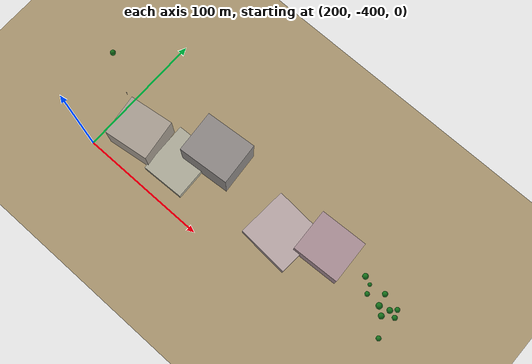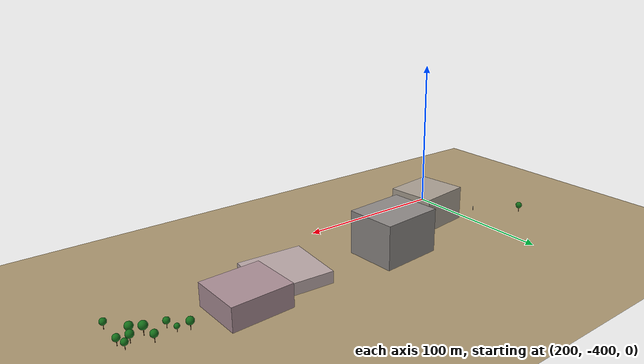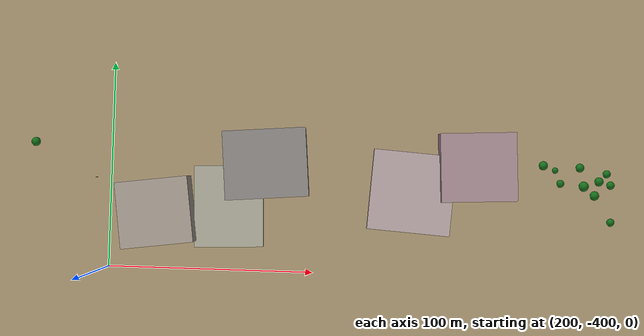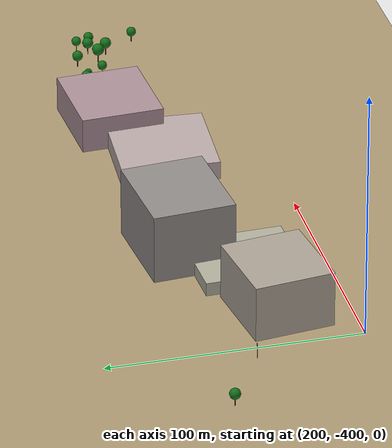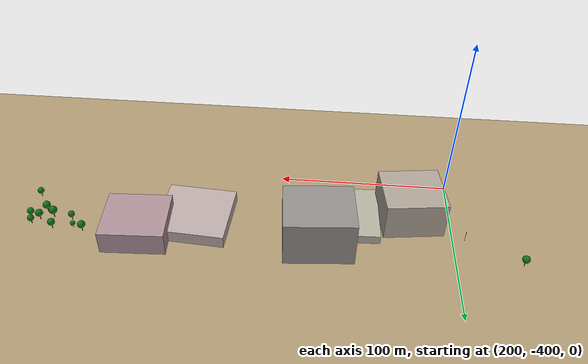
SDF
<sdf version="1.9">
 <world name="crossroad_world">
  <model name="ground_plane">
   <static>true</static>
   <pose>0 0 -0.05 0 0 0</pose>
   <link name="link">
    <collision name="collision">
     <geometry><plane><normal>0 0 1</normal><size>10000 10000</size></plane></geometry>
    </collision>
    <visual name="visual">
     <geometry><plane><normal>0 0 1</normal><size>15000 15000</size></plane></geometry>
     <material><ambient>0.68 0.60 0.45 1</ambient><diffuse>0.68 0.60 0.45 1</diffuse></material>
    </visual>
   </link>
  </model>
  <model name="tl_4">
   <static>true</static>
   <pose>193.120 -356.535 0 0 0 4.418</pose>
   <link name="link">
    <visual name="pole">
     <pose>0 0 2.750 0 0 0</pose>
     <geometry><cylinder><radius>0.06</radius><length>5.50</length></cylinder></geometry>
     <material><ambient>0.25 0.25 0.25 1</ambient><diffuse>0.25 0.25 0.25 1</diffuse></material>
    </visual>
    <visual name="housing">
     <pose>0 0 5.950 0 0 0</pose>
     <geometry><box><size>0.33 0.33 0.9</size></box></geometry>
     <material><ambient>0.08 0.08 0.08 1</ambient><diffuse>0.08 0.08 0.08 1</diffuse></material>
    </visual>
    <visual name="red">
     <pose>0 0 6.250 0 0 0</pose>
     <geometry><sphere><radius>0.09</radius></sphere></geometry>
     <material>
      <ambient>0.90 0.05 0.05 1</ambient>
      <diffuse>0.90 0.05 0.05 1</diffuse>
      <emissive>0.6 0 0 1</emissive>
     </material>
    </visual>
    <visual name="amber">
     <pose>0 0 5.950 0 0 0</pose>
     <geometry><sphere><radius>0.09</radius></sphere></geometry>
     <material><ambient>0.90 0.55 0.00 1</ambient><diffuse>0.90 0.55 0.00 1</diffuse></material>
    </visual>
    <visual name="green">
     <pose>0 0 5.650 0 0 0</pose>
     <geometry><sphere><radius>0.09</radius></sphere></geometry>
     <material><ambient>0.00 0.78 0.00 1</ambient><diffuse>0.00 0.78 0.00 1</diffuse></material>
    </visual>
    <collision name="col">
     <pose>0 0 2.750 0 0 0</pose>
     <geometry><cylinder><radius>0.06</radius><length>5.50</length></cylinder></geometry>
    </collision>
   </link>
  </model>
  <model name="tree_71">
   <static>true</static>
   <pose>444.407 -370.668 0 0 0 0</pose>
   <link name="link">
    <visual name="trunk">
     <pose>0 0 1.624 0 0 0</pose>
     <geometry><cylinder><radius>0.142</radius><length>3.248</length></cylinder></geometry>
     <material><ambient>0.38 0.22 0.08 1</ambient><diffuse>0.38 0.22 0.08 1</diffuse></material>
    </visual>
    <visual name="canopy">
     <pose>0 0 4.502 0 0 0</pose>
     <geometry><sphere><radius>1.929</radius></sphere></geometry>
     <material><ambient>0.08 0.44 0.10 1</ambient><diffuse>0.08 0.44 0.10 1</diffuse></material>
    </visual>
    <collision name="col">
     <pose>0 0 1.624 0 0 0</pose>
     <geometry><cylinder><radius>0.142</radius><length>3.248</length></cylinder></geometry>
    </collision>
   </link>
  </model>
  <model name="tree_73">
   <static>true</static>
   <pose>438.204 -350.968 0 0 0 0</pose>
   <link name="link">
    <visual name="trunk">
     <pose>0 0 1.857 0 0 0</pose>
     <geometry><cylinder><radius>0.162</radius><length>3.714</length></cylinder></geometry>
     <material><ambient>0.38 0.22 0.08 1</ambient><diffuse>0.38 0.22 0.08 1</diffuse></material>
    </visual>
    <visual name="canopy">
     <pose>0 0 5.147 0 0 0</pose>
     <geometry><sphere><radius>2.205</radius></sphere></geometry>
     <material><ambient>0.08 0.44 0.10 1</ambient><diffuse>0.08 0.44 0.10 1</diffuse></material>
    </visual>
    <collision name="col">
     <pose>0 0 1.857 0 0 0</pose>
     <geometry><cylinder><radius>0.162</radius><length>3.714</length></cylinder></geometry>
    </collision>
   </link>
  </model>
  <model name="tree_76">
   <static>true</static>
   <pose>430.733 -353.529 0 0 0 0</pose>
   <link name="link">
    <visual name="trunk">
     <pose>0 0 2.047 0 0 0</pose>
     <geometry><cylinder><radius>0.179</radius><length>4.095</length></cylinder></geometry>
     <material><ambient>0.38 0.22 0.08 1</ambient><diffuse>0.38 0.22 0.08 1</diffuse></material>
    </visual>
    <visual name="canopy">
     <pose>0 0 5.675 0 0 0</pose>
     <geometry><sphere><radius>2.431</radius></sphere></geometry>
     <material><ambient>0.08 0.44 0.10 1</ambient><diffuse>0.08 0.44 0.10 1</diffuse></material>
    </visual>
    <collision name="col">
     <pose>0 0 2.047 0 0 0</pose>
     <geometry><cylinder><radius>0.179</radius><length>4.095</length></cylinder></geometry>
    </collision>
   </link>
  </model>
  <model name="tree_83">
   <static>true</static>
   <pose>436.132 -357.883 0 0 0 0</pose>
   <link name="link">
    <visual name="trunk">
     <pose>0 0 1.908 0 0 0</pose>
     <geometry><cylinder><radius>0.167</radius><length>3.816</length></cylinder></geometry>
     <material><ambient>0.38 0.22 0.08 1</ambient><diffuse>0.38 0.22 0.08 1</diffuse></material>
    </visual>
    <visual name="canopy">
     <pose>0 0 5.289 0 0 0</pose>
     <geometry><sphere><radius>2.266</radius></sphere></geometry>
     <material><ambient>0.08 0.44 0.10 1</ambient><diffuse>0.08 0.44 0.10 1</diffuse></material>
    </visual>
    <collision name="col">
     <pose>0 0 1.908 0 0 0</pose>
     <geometry><cylinder><radius>0.167</radius><length>3.816</length></cylinder></geometry>
    </collision>
   </link>
  </model>
  <model name="tree_87">
   <static>true</static>
   <pose>443.970 -352.592 0 0 0 0</pose>
   <link name="link">
    <visual name="trunk">
     <pose>0 0 1.672 0 0 0</pose>
     <geometry><cylinder><radius>0.146</radius><length>3.344</length></cylinder></geometry>
     <material><ambient>0.38 0.22 0.08 1</ambient><diffuse>0.38 0.22 0.08 1</diffuse></material>
    </visual>
    <visual name="canopy">
     <pose>0 0 4.635 0 0 0</pose>
     <geometry><sphere><radius>1.986</radius></sphere></geometry>
     <material><ambient>0.08 0.44 0.10 1</ambient><diffuse>0.08 0.44 0.10 1</diffuse></material>
    </visual>
    <collision name="col">
     <pose>0 0 1.672 0 0 0</pose>
     <geometry><cylinder><radius>0.146</radius><length>3.344</length></cylinder></geometry>
    </collision>
   </link>
  </model>
  <model name="tree_88">
   <static>true</static>
   <pose>442.013 -347.109 0 0 0 0</pose>
   <link name="link">
    <visual name="trunk">
     <pose>0 0 1.600 0 0 0</pose>
     <geometry><cylinder><radius>0.140</radius><length>3.200</length></cylinder></geometry>
     <material><ambient>0.38 0.22 0.08 1</ambient><diffuse>0.38 0.22 0.08 1</diffuse></material>
    </visual>
    <visual name="canopy">
     <pose>0 0 4.436 0 0 0</pose>
     <geometry><sphere><radius>1.900</radius></sphere></geometry>
     <material><ambient>0.08 0.44 0.10 1</ambient><diffuse>0.08 0.44 0.10 1</diffuse></material>
    </visual>
    <collision name="col">
     <pose>0 0 1.600 0 0 0</pose>
     <geometry><cylinder><radius>0.140</radius><length>3.200</length></cylinder></geometry>
    </collision>
   </link>
  </model>
  <model name="tree_92">
   <static>true</static>
   <pose>410.881 -343.996 0 0 0 0</pose>
   <link name="link">
    <visual name="trunk">
     <pose>0 0 1.869 0 0 0</pose>
     <geometry><cylinder><radius>0.164</radius><length>3.738</length></cylinder></geometry>
     <material><ambient>0.38 0.22 0.08 1</ambient><diffuse>0.38 0.22 0.08 1</diffuse></material>
    </visual>
    <visual name="canopy">
     <pose>0 0 5.181 0 0 0</pose>
     <geometry><sphere><radius>2.219</radius></sphere></geometry>
     <material><ambient>0.08 0.44 0.10 1</ambient><diffuse>0.08 0.44 0.10 1</diffuse></material>
    </visual>
    <collision name="col">
     <pose>0 0 1.869 0 0 0</pose>
     <geometry><cylinder><radius>0.164</radius><length>3.738</length></cylinder></geometry>
    </collision>
   </link>
  </model>
  <model name="tree_93">
   <static>true</static>
   <pose>428.798 -344.523 0 0 0 0</pose>
   <link name="link">
    <visual name="trunk">
     <pose>0 0 1.777 0 0 0</pose>
     <geometry><cylinder><radius>0.155</radius><length>3.554</length></cylinder></geometry>
     <material><ambient>0.38 0.22 0.08 1</ambient><diffuse>0.38 0.22 0.08 1</diffuse></material>
    </visual>
    <visual name="canopy">
     <pose>0 0 4.925 0 0 0</pose>
     <geometry><sphere><radius>2.110</radius></sphere></geometry>
     <material><ambient>0.08 0.44 0.10 1</ambient><diffuse>0.08 0.44 0.10 1</diffuse></material>
    </visual>
    <collision name="col">
     <pose>0 0 1.777 0 0 0</pose>
     <geometry><cylinder><radius>0.155</radius><length>3.554</length></cylinder></geometry>
    </collision>
   </link>
  </model>
  <model name="tree_99">
   <static>true</static>
   <pose>419.531 -352.528 0 0 0 0</pose>
   <link name="link">
    <visual name="trunk">
     <pose>0 0 1.595 0 0 0</pose>
     <geometry><cylinder><radius>0.140</radius><length>3.190</length></cylinder></geometry>
     <material><ambient>0.38 0.22 0.08 1</ambient><diffuse>0.38 0.22 0.08 1</diffuse></material>
    </visual>
    <visual name="canopy">
     <pose>0 0 4.421 0 0 0</pose>
     <geometry><sphere><radius>1.894</radius></sphere></geometry>
     <material><ambient>0.08 0.44 0.10 1</ambient><diffuse>0.08 0.44 0.10 1</diffuse></material>
    </visual>
    <collision name="col">
     <pose>0 0 1.595 0 0 0</pose>
     <geometry><cylinder><radius>0.140</radius><length>3.190</length></cylinder></geometry>
    </collision>
   </link>
  </model>
  <model name="tree_115">
   <static>true</static>
   <pose>416.909 -346.147 0 0 0 0</pose>
   <link name="link">
    <visual name="trunk">
     <pose>0 0 1.250 0 0 0</pose>
     <geometry><cylinder><radius>0.109</radius><length>2.500</length></cylinder></geometry>
     <material><ambient>0.38 0.22 0.08 1</ambient><diffuse>0.38 0.22 0.08 1</diffuse></material>
    </visual>
    <visual name="canopy">
     <pose>0 0 3.465 0 0 0</pose>
     <geometry><sphere><radius>1.484</radius></sphere></geometry>
     <material><ambient>0.08 0.44 0.10 1</ambient><diffuse>0.08 0.44 0.10 1</diffuse></material>
    </visual>
    <collision name="col">
     <pose>0 0 1.250 0 0 0</pose>
     <geometry><cylinder><radius>0.109</radius><length>2.500</length></cylinder></geometry>
    </collision>
   </link>
  </model>
  <model name="tree_200">
   <static>true</static>
   <pose>163.228 -340.183 0 0 0 0</pose>
   <link name="link">
    <visual name="trunk">
     <pose>0 0 1.837 0 0 0</pose>
     <geometry><cylinder><radius>0.161</radius><length>3.673</length></cylinder></geometry>
     <material><ambient>0.38 0.22 0.08 1</ambient><diffuse>0.38 0.22 0.08 1</diffuse></material>
    </visual>
    <visual name="canopy">
     <pose>0 0 5.091 0 0 0</pose>
     <geometry><sphere><radius>2.181</radius></sphere></geometry>
     <material><ambient>0.08 0.44 0.10 1</ambient><diffuse>0.08 0.44 0.10 1</diffuse></material>
    </visual>
    <collision name="col">
     <pose>0 0 1.837 0 0 0</pose>
     <geometry><cylinder><radius>0.161</radius><length>3.673</length></cylinder></geometry>
    </collision>
   </link>
  </model>
  <model name="building_179">
   <static>true</static>
   <pose>347.079 -359.174 3.712 0 0 -0.067</pose>
   <link name="link">
    <visual name="body">
     <geometry><box><size>40.26 39.02 7.42</size></box></geometry>
     <material><ambient>0.74 0.67 0.67 1</ambient><diffuse>0.74 0.67 0.67 1</diffuse></material>
    </visual>
    <collision name="col"><geometry><box><size>40.26 39.02 7.42</size></box></geometry></collision>
   </link>
  </model>
  <model name="building_182">
   <static>true</static>
   <pose>276.205 -347.641 13.940 0 0 0.081</pose>
   <link name="link">
    <visual name="body">
     <geometry><box><size>39.56 32.73 27.88</size></box></geometry>
     <material><ambient>0.57 0.55 0.54 1</ambient><diffuse>0.57 0.55 0.54 1</diffuse></material>
    </visual>
    <collision name="col"><geometry><box><size>39.56 32.73 27.88</size></box></geometry></collision>
   </link>
  </model>
  <model name="building_615">
   <static>true</static>
   <pose>223.692 -372.459 11.296 0 0 0.131</pose>
   <link name="link">
    <visual name="body">
     <geometry><box><size>34.75 31.74 22.59</size></box></geometry>
     <material><ambient>0.68 0.64 0.59 1</ambient><diffuse>0.68 0.64 0.59 1</diffuse></material>
    </visual>
    <collision name="col"><geometry><box><size>34.75 31.74 22.59</size></box></geometry></collision>
   </link>
  </model>
  <model name="building_623">
   <static>true</static>
   <pose>258.202 -368.687 2.695 0 0 0.035</pose>
   <link name="link">
    <visual name="body">
     <geometry><box><size>33.44 39.62 5.39</size></box></geometry>
     <material><ambient>0.70 0.69 0.62 1</ambient><diffuse>0.70 0.69 0.62 1</diffuse></material>
    </visual>
    <collision name="col"><geometry><box><size>33.44 39.62 5.39</size></box></geometry></collision>
   </link>
  </model>
  <model name="building_632">
   <static>true</static>
   <pose>378.735 -345.913 7.072 0 0 0.048</pose>
   <link name="link">
    <visual name="body">
     <geometry><box><size>36.81 33.28 14.14</size></box></geometry>
     <material><ambient>0.68 0.57 0.60 1</ambient><diffuse>0.68 0.57 0.60 1</diffuse></material>
    </visual>
    <collision name="col"><geometry><box><size>36.81 33.28 14.14</size></box></geometry></collision>
   </link>
  </model>
 </world>
</sdf>
